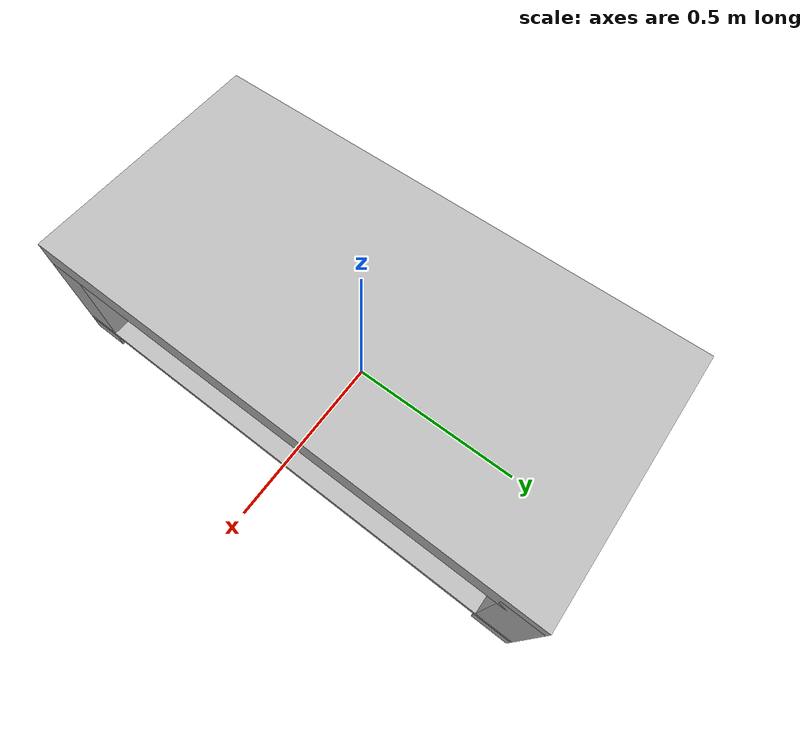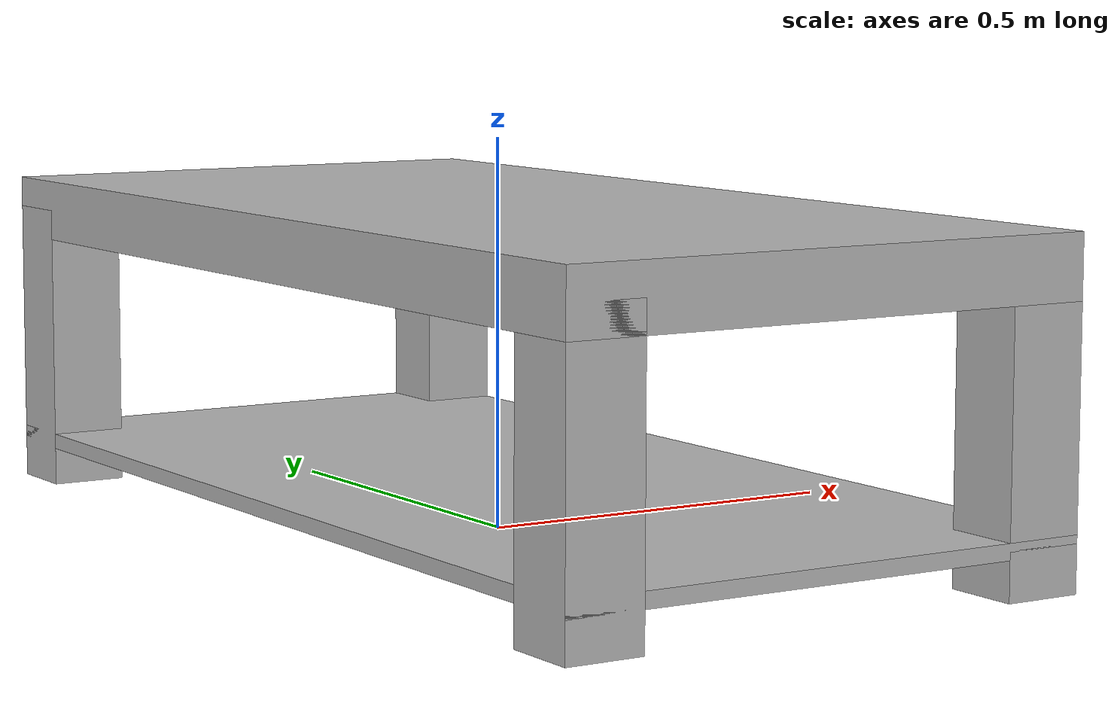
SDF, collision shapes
<sdf version='1.7'>
  <model name='tea_table'>
    <link name='base_link'>
      <inertial>
        <pose>0 0 0.38 0 -0 0</pose>
        <mass>1</mass>
        <inertia>
          <ixx>1.00538</ixx>
          <ixy>0</ixy>
          <ixz>0</ixz>
          <iyy>1.00538</iyy>
          <iyz>0</iyz>
          <izz>0.11076</izz>
        </inertia>
      </inertial>
      <collision name='base_link_fixed_joint_lump__body_link_collision'>
        <pose>0 0 0.38 0 -0 0</pose>
        <geometry>
          <box>
            <size>0.7 1.4 0.08</size>
          </box>
        </geometry>
      </collision>
      <collision name='base_link_fixed_joint_lump__top_link_collision_1'>
        <pose>0 0 0.06 0 -0 0</pose>
        <geometry>
          <box>
            <size>0.7 1.4 0.02</size>
          </box>
        </geometry>
      </collision>
      <collision name='base_link_fixed_joint_lump__lb_link_collision_2'>
        <pose>-0.3 -0.65 0.19 0 -0 0</pose>
        <geometry>
          <box>
            <size>0.1 0.1 0.38</size>
          </box>
        </geometry>
      </collision>
      <collision name='base_link_fixed_joint_lump__lf_link_collision_3'>
        <pose>0.3 -0.65 0.19 0 -0 0</pose>
        <geometry>
          <box>
            <size>0.1 0.1 0.38</size>
          </box>
        </geometry>
      </collision>
      <collision name='base_link_fixed_joint_lump__rb_link_collision_4'>
        <pose>-0.3 0.65 0.19 0 -0 0</pose>
        <geometry>
          <box>
            <size>0.1 0.1 0.38</size>
          </box>
        </geometry>
      </collision>
      <collision name='base_link_fixed_joint_lump__rf_link_collision_5'>
        <pose>0.3 0.65 0.19 0 -0 0</pose>
        <geometry>
          <box>
            <size>0.1 0.1 0.38</size>
          </box>
        </geometry>
      </collision>
      <visual name='base_link_visual'>
        <pose>0 0 0 0 -0 0</pose>
        <geometry>
          <box>
            <size>0.01 0.01 0.001</size>
          </box>
        </geometry>
      </visual>
      <visual name='base_link_fixed_joint_lump__body_link_visual_1'>
        <pose>-0.35 -0.704 0 0 -0 0</pose>
        <geometry>
          <mesh>
            <scale>1 1 1</scale>
            <uri>model://tea_table/tea_table.dae</uri>
          </mesh>
        </geometry>
      </visual>
    </link>
    <frame name='base_to_body' attached_to='base_link'>
      <pose>0 0 0.38 0 -0 0</pose>
    </frame>
    <frame name='body_link' attached_to='base_to_body'/>
    <frame name='base_to_top' attached_to='base_link'>
      <pose>0 0 0.06 0 -0 0</pose>
    </frame>
    <frame name='top_link' attached_to='base_to_top'/>
    <frame name='body_to_lb' attached_to='base_link'>
      <pose>0 0 0 0 -0 0</pose>
    </frame>
    <frame name='lb_link' attached_to='body_to_lb'/>
    <frame name='body_to_lf' attached_to='base_link'>
      <pose>0 0 0 0 -0 0</pose>
    </frame>
    <frame name='lf_link' attached_to='body_to_lf'/>
    <frame name='body_to_rb' attached_to='base_link'>
      <pose>0 0 0 0 -0 0</pose>
    </frame>
    <frame name='rb_link' attached_to='body_to_rb'/>
    <frame name='body_to_rf' attached_to='base_link'>
      <pose>0 0 0 0 -0 0</pose>
    </frame>
    <frame name='rf_link' attached_to='body_to_rf'/>
  </model>
</sdf>
